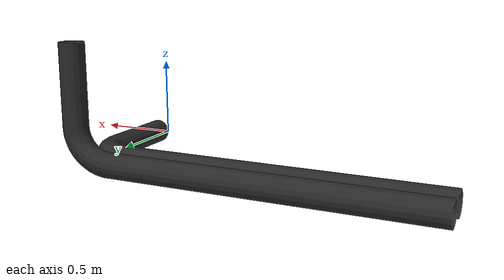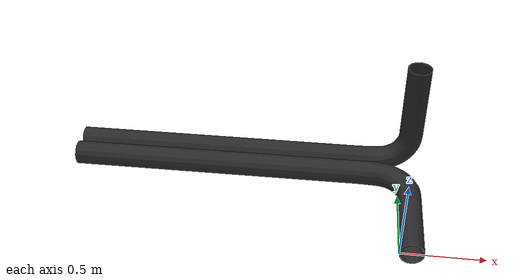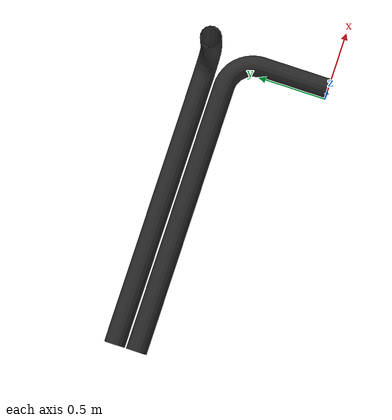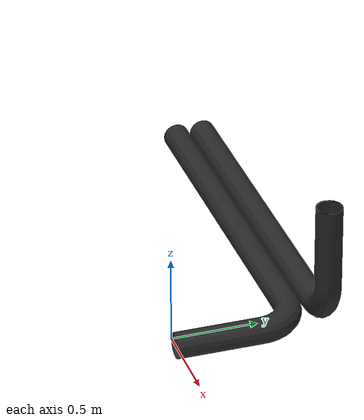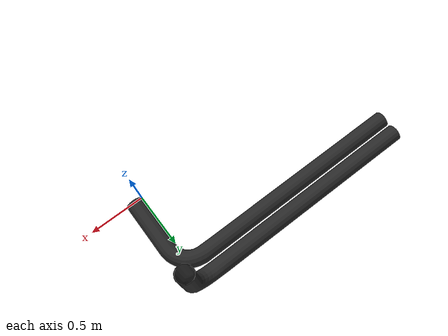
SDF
<?xml version="1.0"?>
<sdf version="1.6">
  <model name="pipe6">
    <link name="link">
      <collision name="collision">
        <geometry>
          <mesh>
            <uri>model://curved/meshes/curved.dae</uri>
          </mesh>
        </geometry>
      </collision>
      <visual name="visual">
        <geometry>
          <mesh>
            <uri>model://curved/meshes/curved.dae</uri>
          </mesh>
        </geometry>
      </visual>
    </link>
  </model>
</sdf>
